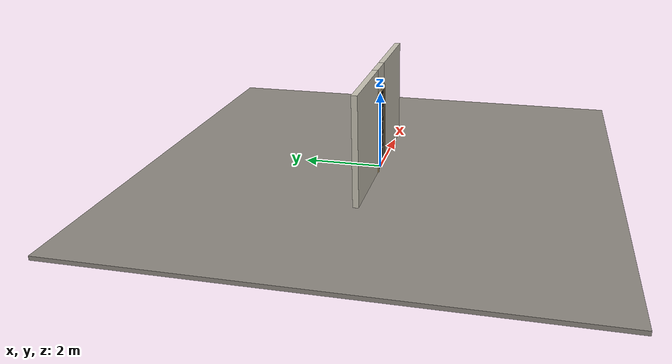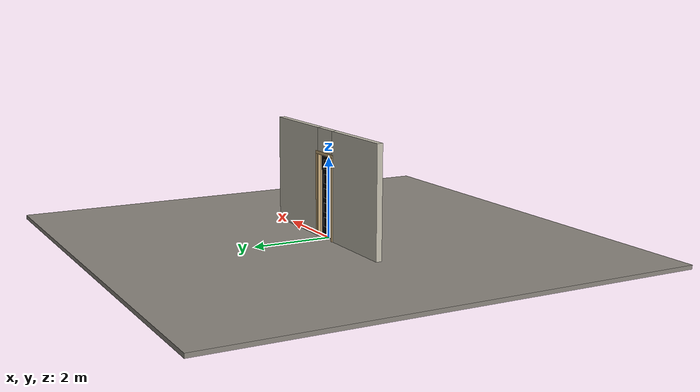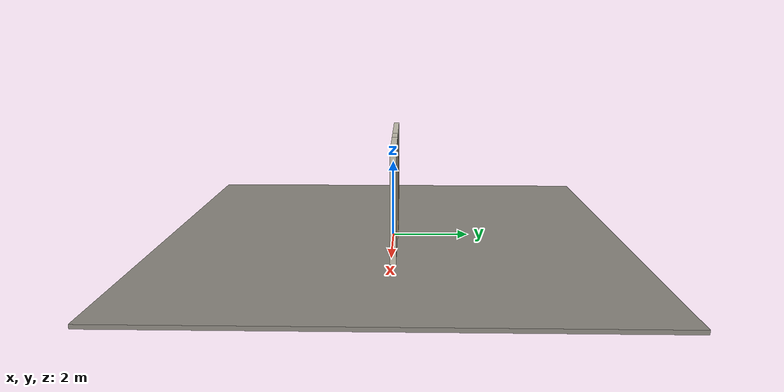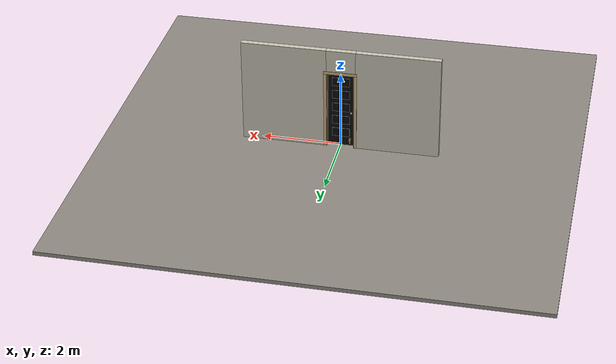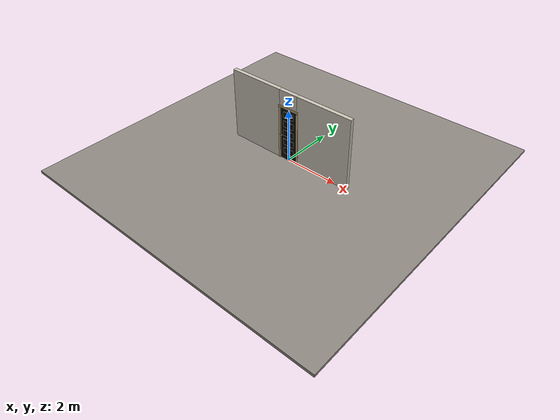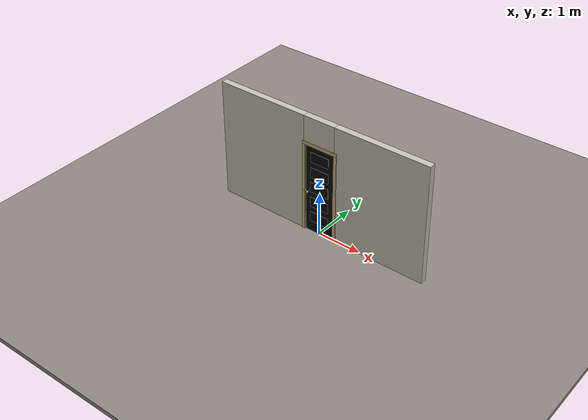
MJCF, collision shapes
<?xml version="1.0" ?>
<mujoco model="db0917_swing_single_full">
  <compiler angle="radian" meshdir="../../hardware" texturedir="../../textures" autolimits="true" inertiafromgeom="false"/>
  <option timestep="0.002" integrator="implicitfast" cone="elliptic" impratio="10" noslip_iterations="3">
    <flag multiccd="enable"/>
  </option>
  <size memory="16M"/>
  <default>
    <geom condim="4" solref="0.005 1" solimp="0.95 0.99 0.001"/>
    <joint solreflimit="0.005 1" solimplimit="0.95 0.99 0.001"/>
    <tendon solreflimit="0.005 1"/>
    <equality solref="0.002 1"/>
  </default>
  <visual>
    <headlight ambient="0.4 0.4 0.4" diffuse="0.7 0.7 0.7" specular="0.2 0.2 0.2"/>
    <quality shadowsize="4096"/>
    <map znear="0.01" zfar="60"/>
  </visual>
  <asset>
    <mesh name="hinge_96510cf394" file="hinge_96510cf394.obj"/>
    <mesh name="hinge_jamb_7fd4ca52b2" file="hinge_jamb_7fd4ca52b2.obj"/>
    <mesh name="knob_248d825e64" file="knob_248d825e64.obj"/>
    <mesh name="knob_d1888f6f03" file="knob_d1888f6f03.obj"/>
    <material name="mat_floor" rgba="0.55 0.53 0.5 1" specular="0.2" shininess="0.15" reflectance="0"/>
    <material name="mat_wall" rgba="0.78 0.76 0.7 1" specular="0.2" shininess="0.1" reflectance="0"/>
    <material name="mat_leaf" rgba="0.04 0.04 0.04 1" specular="0.2" shininess="0.49" reflectance="0"/>
    <material name="mat_leaf_panel" rgba="0.037 0.037 0.037 1" specular="0.2" shininess="0.49" reflectance="0"/>
    <material name="mat_hinge" rgba="0.65 0.66 0.68 1" specular="0.74" shininess="0.5" reflectance="0.36"/>
    <material name="mat_op_nickel_satin" rgba="0.72 0.7 0.66 1" specular="0.8" shininess="0.65" reflectance="0.4"/>
    <material name="mat_trim" rgba="0.85 0.66 0.3 1" specular="0.8" shininess="0.75" reflectance="0.4"/>
    <material name="mat_bolt" rgba="0.85 0.66 0.3 1" specular="0.8" shininess="0.75" reflectance="0.4"/>
    <material name="mat_frame" rgba="0.82 0.7 0.5 1" specular="0.2" shininess="0.45" reflectance="0"/>
    <material name="mat_kickdown" rgba="0.85 0.66 0.3 1" specular="0.8" shininess="0.75" reflectance="0.4"/>
    <material name="mat_kickdown_pad" rgba="0.92 0.92 0.9 1" specular="0.2" shininess="0.6" reflectance="0"/>
    <texture name="skybox" type="skybox" builtin="gradient" rgb1="0.6 0.7 0.85" rgb2="0.9 0.92 0.95" width="256" height="256"/>
  </asset>
  <worldbody>
    <light name="sun" pos="1.5 -2.5 4" dir="-0.3 0.5 -0.8" directional="true" diffuse="0.8 0.8 0.8" specular="0.3 0.3 0.3" castshadow="true"/>
    <light name="fill" pos="-1.5 2.5 3" dir="0.3 -0.5 -0.7" directional="true" diffuse="0.35 0.35 0.4" castshadow="false"/>
    <camera name="robot_view" pos="0 -2.494187 1.734312" xyaxes="1 0 0 0 0.26963 0.962964" fovy="52"/>
    <camera name="far_view" pos="0 2.590187 1.734312" xyaxes="-1 0 0 0 -0.26963 0.962964" fovy="52"/>
    <camera name="iso" pos="-1.932062 -2.087438 2.141063" xyaxes="0.741536 -0.670913 0 0.242917 0.268487 0.932151" fovy="46"/>
    <camera name="detail_handle" pos="-0.0895 -0.864 1.245" xyaxes="0.97561 0.219512 0 -0.070934 0.315262 0.94635" fovy="38"/>
    <geom name="floor" type="box" size="6 6 0.05" pos="0 0 -0.05" material="mat_floor" group="0" contype="1" conaffinity="1" friction="0.8 0.005 0.0001" density="2400"/>
    <geom name="wall_left" type="box" size="1.05875 0.0725 1.35" pos="-1.44125 0.048 1.35" material="mat_wall" group="0" contype="1" conaffinity="1" friction="0.6 0.005 0.0001" density="800"/>
    <geom name="wall_right" type="box" size="1.07375 0.0725 1.35" pos="1.42625 0.048 1.35" material="mat_wall" group="0" contype="1" conaffinity="1" friction="0.6 0.005 0.0001" density="800"/>
    <geom name="wall_header" type="box" size="0.3675 0.0725 0.303" pos="-0.015 0.048 2.397" material="mat_wall" group="0" contype="1" conaffinity="1" friction="0.6 0.005 0.0001" density="800"/>
    <geom name="hinge_0_jamb" type="mesh" mesh="hinge_jamb_7fd4ca52b2" pos="0.3305 -0.0245 0.259" quat="0 0 1 0" material="mat_hinge" group="1" contype="0" conaffinity="0" density="7850"/>
    <geom name="hinge_1_jamb" type="mesh" mesh="hinge_jamb_7fd4ca52b2" pos="0.3305 -0.0245 1.861" quat="0 0 1 0" material="mat_hinge" group="1" contype="0" conaffinity="0" density="7850"/>
    <geom name="jamb_hinge" type="box" size="0.0095 0.0725 1.0225" pos="0.343 0.048 1.0225" material="mat_frame" group="0" contype="1" conaffinity="1" friction="0.6 0.005 0.0001" density="400"/>
    <geom name="strike_965_wall_n" type="box" size="0.0245 0.056325 0.0167" pos="-0.358 0.064175 0.965" material="mat_frame" group="0" contype="1" conaffinity="1" friction="0.6 0.005 0.0001" density="400"/>
    <geom name="strike_965_wall_p" type="box" size="0.0245 0.008 0.0167" pos="-0.358 -0.01585 0.965" material="mat_frame" group="0" contype="1" conaffinity="1" friction="0.6 0.005 0.0001" density="400"/>
    <geom name="strike_965_ramp" type="box" size="0.0245 0.01649 0.0167" pos="-0.362636 -0.028673 0.965" quat="0.977148 0 0 -0.212558" material="mat_frame" group="0" contype="1" conaffinity="1" friction="0.12 0.005 0.0001" density="400"/>
    <geom name="strike_965_back" type="box" size="0.01615 0.00785 0.0167" pos="-0.36635 0 0.965" material="mat_frame" group="0" contype="1" conaffinity="1" friction="0.6 0.005 0.0001" density="400"/>
    <geom name="jamb_strike_0" type="box" size="0.0245 0.0725 0.47415" pos="-0.358 0.048 0.47415" material="mat_frame" group="0" contype="1" conaffinity="1" friction="0.6 0.005 0.0001" density="400"/>
    <geom name="jamb_strike_1" type="box" size="0.0245 0.0725 0.53165" pos="-0.358 0.048 1.51335" material="mat_frame" group="0" contype="1" conaffinity="1" friction="0.6 0.005 0.0001" density="400"/>
    <geom name="jamb_head" type="box" size="0.3675 0.0725 0.0095" pos="-0.015 0.048 2.0545" material="mat_frame" group="0" contype="1" conaffinity="1" friction="0.6 0.005 0.0001" density="400"/>
    <geom name="head_stud" type="box" size="0.3675 0.0725 0.015" pos="-0.015 0.048 2.079" material="mat_wall" group="0" contype="1" conaffinity="1" friction="0.6 0.005 0.0001" density="500"/>
    <geom name="stop_hinge" type="box" size="0.0055 0.016 1.0225" pos="0.328 0.034 1.0225" material="mat_frame" group="0" contype="1" conaffinity="1" friction="0.6 0.005 0.0001" density="400"/>
    <geom name="stop_strike" type="box" size="0.0055 0.016 1.0225" pos="-0.328 0.034 1.0225" material="mat_frame" group="0" contype="1" conaffinity="1" friction="0.6 0.005 0.0001" density="400"/>
    <geom name="stop_head" type="box" size="0.3335 0.016 0.0055" pos="0 0.034 2.0395" material="mat_frame" group="0" contype="1" conaffinity="1" friction="0.6 0.005 0.0001" density="400"/>
    <geom name="casing_l_n" type="box" size="0.035 0.008 1.032" pos="-0.3825 -0.0325 1.0225" material="mat_frame" group="2" contype="0" conaffinity="0" density="400"/>
    <geom name="casing_r_n" type="box" size="0.035 0.008 1.032" pos="0.3825 -0.0325 1.0225" material="mat_frame" group="2" contype="0" conaffinity="0" density="400"/>
    <geom name="casing_h_n" type="box" size="0.4175 0.008 0.035" pos="0 -0.0325 2.094" material="mat_frame" group="2" contype="0" conaffinity="0" density="400"/>
    <geom name="casing_l_p" type="box" size="0.035 0.008 1.032" pos="-0.3825 0.1285 1.0225" material="mat_frame" group="2" contype="0" conaffinity="0" density="400"/>
    <geom name="casing_r_p" type="box" size="0.035 0.008 1.032" pos="0.3825 0.1285 1.0225" material="mat_frame" group="2" contype="0" conaffinity="0" density="400"/>
    <geom name="casing_h_p" type="box" size="0.4175 0.008 0.035" pos="0 0.1285 2.094" material="mat_frame" group="2" contype="0" conaffinity="0" density="400"/>
    <site name="approach_point" pos="0 -1.5 0" quat="1 0 0 0" size="0.05" rgba="0.2 0.9 0.2 0.5" group="4"/>
    <site name="goal_point" pos="0 1.5 0" quat="1 0 0 0" size="0.05" rgba="0.2 0.9 0.2 0.5" group="4"/>
    <site name="door_plane_center" pos="0 0 1.0225" quat="1 0 0 0" size="0.02" rgba="0.2 0.9 0.2 0.5" group="4"/>
    <body name="leaf" pos="0.3335 0 0">
      <inertial pos="-0.352047 0.003449 0.925129" mass="10.020532" quat="0.511998 -0.518262 -0.477638 -0.491044" diaginertia="0.3867702 3.908591371 4.291735949"/>
      <joint name="leaf_hinge" type="hinge" axis="0 0 1" pos="-0.003 -0.0245 0" limited="true" range="0 2.356194" damping="0.119633" frictionloss="3.252883" armature="0.02"/>
      <geom name="leaf_slab" type="box" size="0.33 0.0175 1.016" pos="-0.333 0 1.025" material="mat_leaf" group="0" contype="1" conaffinity="1" friction="0.35 0.005 0.0001" density="1"/>
      <geom name="leaf_panel_0_n" type="box" size="0.22 0.003 0.114688" pos="-0.333 -0.0205 0.367208" material="mat_leaf_panel" group="1" contype="0" conaffinity="0" density="1"/>
      <geom name="leaf_panel_0_p" type="box" size="0.22 0.003 0.114688" pos="-0.333 0.0205 0.367208" material="mat_leaf_panel" group="1" contype="0" conaffinity="0" density="1"/>
      <geom name="leaf_panel_1_n" type="box" size="0.22 0.003 0.114688" pos="-0.333 -0.0205 0.726584" material="mat_leaf_panel" group="1" contype="0" conaffinity="0" density="1"/>
      <geom name="leaf_panel_1_p" type="box" size="0.22 0.003 0.114688" pos="-0.333 0.0205 0.726584" material="mat_leaf_panel" group="1" contype="0" conaffinity="0" density="1"/>
      <geom name="leaf_panel_2_n" type="box" size="0.22 0.003 0.114688" pos="-0.333 -0.0205 1.08596" material="mat_leaf_panel" group="1" contype="0" conaffinity="0" density="1"/>
      <geom name="leaf_panel_2_p" type="box" size="0.22 0.003 0.114688" pos="-0.333 0.0205 1.08596" material="mat_leaf_panel" group="1" contype="0" conaffinity="0" density="1"/>
      <geom name="leaf_panel_3_n" type="box" size="0.22 0.003 0.114688" pos="-0.333 -0.0205 1.445336" material="mat_leaf_panel" group="1" contype="0" conaffinity="0" density="1"/>
      <geom name="leaf_panel_3_p" type="box" size="0.22 0.003 0.114688" pos="-0.333 0.0205 1.445336" material="mat_leaf_panel" group="1" contype="0" conaffinity="0" density="1"/>
      <geom name="leaf_panel_4_n" type="box" size="0.22 0.003 0.114688" pos="-0.333 -0.0205 1.804712" material="mat_leaf_panel" group="1" contype="0" conaffinity="0" density="1"/>
      <geom name="leaf_panel_4_p" type="box" size="0.22 0.003 0.114688" pos="-0.333 0.0205 1.804712" material="mat_leaf_panel" group="1" contype="0" conaffinity="0" density="1"/>
      <geom name="hinge_0" type="mesh" mesh="hinge_96510cf394" pos="-0.003 -0.0245 0.259" quat="0 0 1 0" material="mat_hinge" group="1" contype="0" conaffinity="0" density="7850"/>
      <geom name="hinge_1" type="mesh" mesh="hinge_96510cf394" pos="-0.003 -0.0245 1.861" quat="0 0 1 0" material="mat_hinge" group="1" contype="0" conaffinity="0" density="7850"/>
      <geom name="leaf_latch_bolt_faceplate" type="box" size="0.0006 0.01235 0.0267" pos="-0.6624 0 0.965" material="mat_bolt" group="1" contype="0" conaffinity="0" density="8500"/>
      <geom name="kickdown_housing" type="box" size="0.022 0.016 0.045" pos="-0.563 0.0335 0.169" material="mat_kickdown" group="2" contype="0" conaffinity="0" density="8500"/>
      <geom name="kickdown_arm" type="box" size="0.012 0.006 0.045" pos="-0.563 0.0295 0.104" material="mat_kickdown" group="2" contype="0" conaffinity="0" density="8500"/>
      <geom name="kickdown_pad" type="cylinder" size="0.014 0.006" pos="-0.563 0.0295 0.061" material="mat_kickdown_pad" group="2" contype="0" conaffinity="0" density="1200"/>
      <site name="leaf_edge_mid" pos="-0.663 0 1.016" quat="1 0 0 0" size="0.02" rgba="0.2 0.9 0.2 0.5" group="4"/>
      <body name="leaf_handle" pos="-0.603 0 0.965">
        <inertial pos="0 -0.000216 0" mass="1.146661" quat="0.5 0.5 0.5 0.5" diaginertia="0.000312402 0.003728942 0.003728942"/>
        <joint name="leaf_handle_hinge" type="hinge" axis="0 1 0" limited="true" range="0 0.87" damping="0.143613" frictionloss="0.038" stiffness="0.5" springref="-0.5" armature="0.01"/>
        <geom name="leaf_handle_spindle" type="cylinder" size="0.006 0.0255" pos="0 0 0" quat="0.707107 -0.707107 0 0" material="mat_op_nickel_satin" group="1" contype="0" conaffinity="0" density="7850"/>
        <geom name="leaf_handle_knob_n" type="mesh" mesh="knob_248d825e64" pos="0 -0.0175 0" quat="0 0 -0.707107 0.707107" material="mat_op_nickel_satin" group="1" contype="0" conaffinity="0" density="3000"/>
        <geom name="leaf_handle_knob_col_n" type="sphere" size="0.0243" pos="0 -0.064 0" material="mat_op_nickel_satin" group="0" contype="1" conaffinity="1" friction="0.9 0.01 0.0001" density="3000"/>
        <geom name="leaf_handle_knob_neck_n" type="cylinder" size="0.011 0.012" pos="0 -0.0295 0" quat="0.707107 -0.707107 0 0" material="mat_op_nickel_satin" group="3" contype="1" conaffinity="1" rgba="0.8 0.3 0.3 0.25" friction="0.6 0.005 0.0001" density="3000"/>
        <geom name="leaf_handle_knob_p" type="mesh" mesh="knob_d1888f6f03" pos="0 0.0175 0" quat="0 0 0.707107 0.707107" material="mat_op_nickel_satin" group="1" contype="0" conaffinity="0" density="3000"/>
        <geom name="leaf_handle_knob_col_p" type="sphere" size="0.0243" pos="0 0.064 0" material="mat_op_nickel_satin" group="0" contype="1" conaffinity="1" friction="0.9 0.01 0.0001" density="3000"/>
        <geom name="leaf_handle_knob_neck_p" type="cylinder" size="0.011 0.012" pos="0 0.0295 0" quat="0.707107 -0.707107 0 0" material="mat_op_nickel_satin" group="3" contype="1" conaffinity="1" rgba="0.8 0.3 0.3 0.25" friction="0.6 0.005 0.0001" density="3000"/>
        <site name="leaf_handle_grip_n" pos="0 -0.064 0" quat="1 0 0 0" size="0.012" rgba="0.2 0.9 0.2 0.5" group="4"/>
        <site name="leaf_handle_grip_p" pos="0 0.064 0" quat="1 0 0 0" size="0.012" rgba="0.2 0.9 0.2 0.5" group="4"/>
      </body>
      <body name="leaf_latch_bolt" pos="-0.663 0 0.965">
        <inertial pos="0.00865 0 0" mass="0.041419" quat="0.92388 0.382683 0 0" diaginertia="0.000000798 0.000005598 0.000005598"/>
        <joint name="leaf_latch_bolt_slide" type="slide" axis="1 0 0" limited="true" range="0 0.0127" damping="2" frictionloss="0.3" stiffness="300" springref="-0.008333" armature="0.1"/>
        <geom name="leaf_latch_bolt_capsule" type="capsule" size="0.00635 0.015" pos="0.00865 0 0" quat="0.707107 0 -0.707107 0" material="mat_bolt" group="0" contype="1" conaffinity="1" friction="0.2 0.005 0.0001" density="8500"/>
      </body>
    </body>
  </worldbody>
  <tendon>
    <fixed name="leaf_latch_bolt_coupling" limited="true" range="0 10">
      <joint joint="leaf_latch_bolt_slide" coef="1"/>
      <joint joint="leaf_handle_hinge" coef="-0.015679"/>
    </fixed>
  </tendon>
  <sensor>
    <jointpos name="leaf_hinge_pos" joint="leaf_hinge"/>
    <jointvel name="leaf_hinge_vel" joint="leaf_hinge"/>
    <jointpos name="leaf_handle_hinge_pos" joint="leaf_handle_hinge"/>
    <jointvel name="leaf_handle_hinge_vel" joint="leaf_handle_hinge"/>
    <jointpos name="leaf_latch_bolt_slide_pos" joint="leaf_latch_bolt_slide"/>
    <jointvel name="leaf_latch_bolt_slide_vel" joint="leaf_latch_bolt_slide"/>
  </sensor>
</mujoco>
